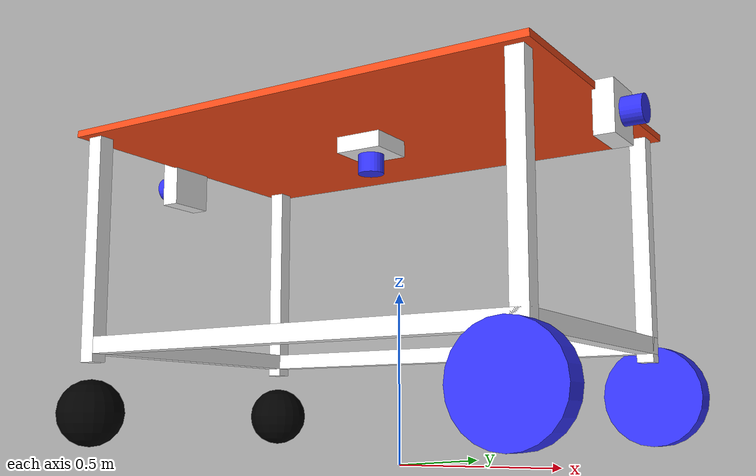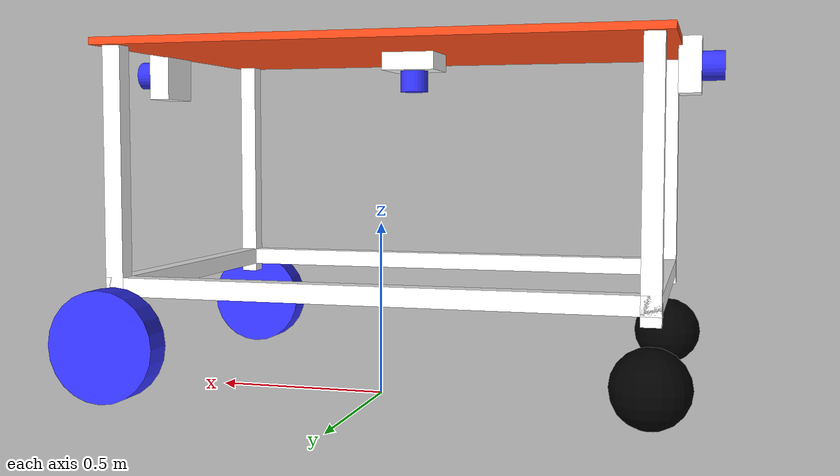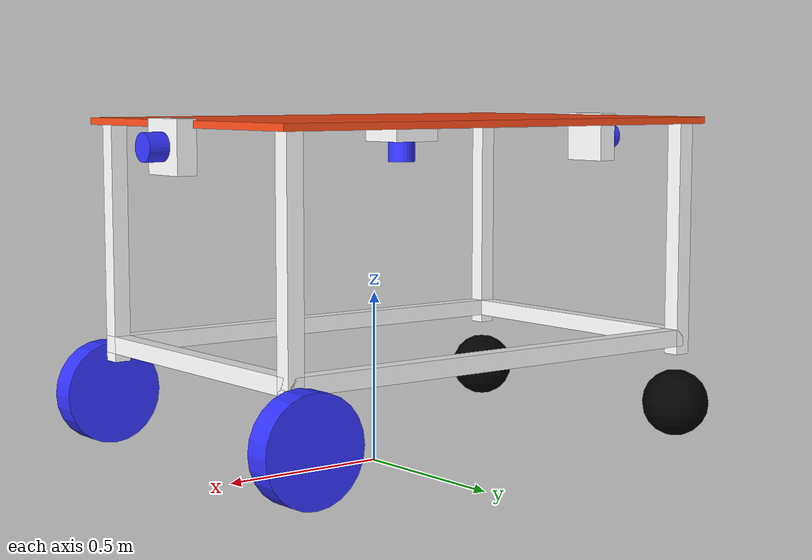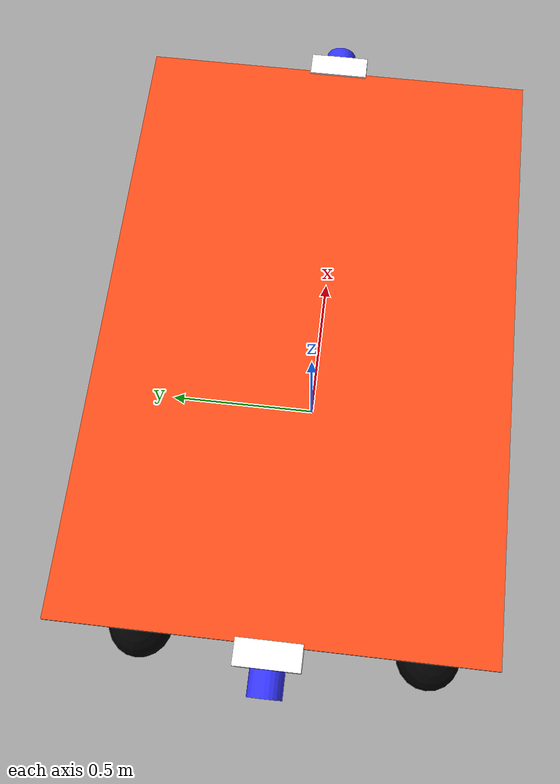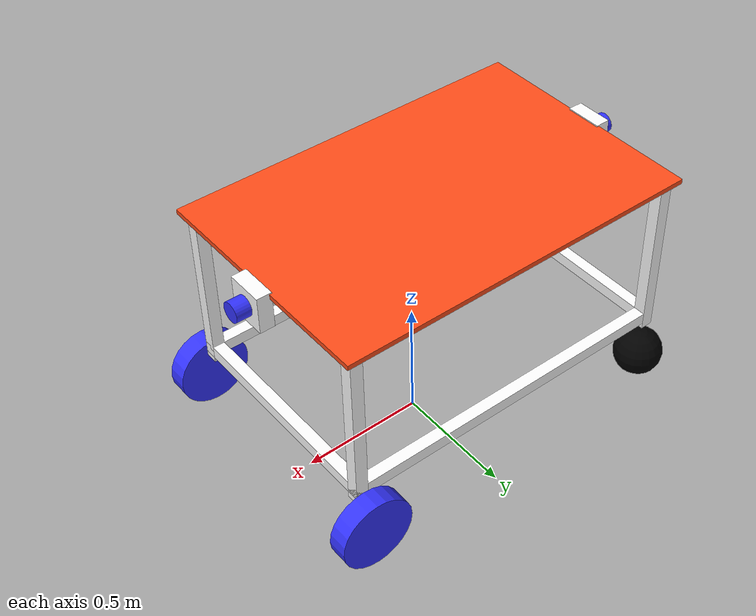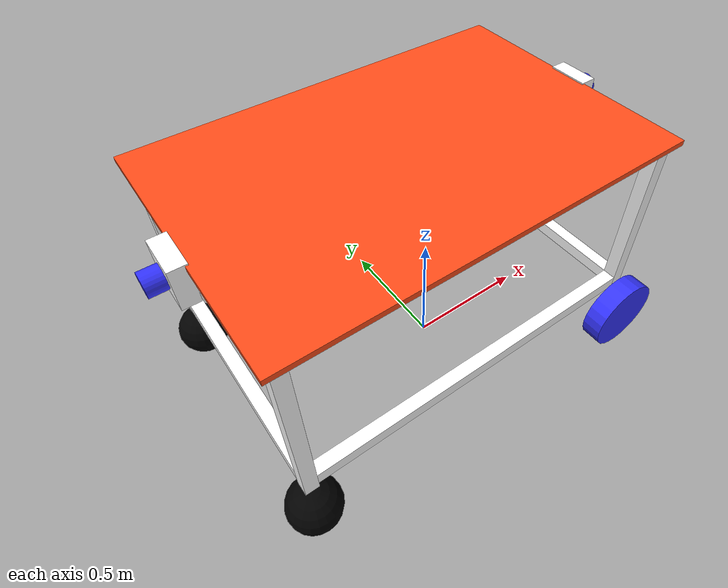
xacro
<?xml version="1.0"?>
<robot xmlns:xacro="http://www.ros.org/wiki/xacro" >

    <xacro:include filename="inertial_macros.xacro"/>

    <material name="white">
        <color rgba="1 1 1 1" />
    </material>

    <material name="orange">
        <color rgba="1 0.3 0.1 1"/>
    </material>

    <material name="blue">
        <color rgba="0.2 0.2 1 1"/>
    </material>

    <material name="black">
        <color rgba="0 0 0 1"/>
    </material>

    <!-- BASE LINK -->

    <link name="base_link">

    </link>

    <!-- CHASSIS LINK -->

    <joint name="chassis_joint" type="fixed">
        <parent link="base_link"/>
        <child link="chassis"/>
        <origin xyz="-0.1 0 0"/>
    </joint>

    <link name="chassis">
        <visual>
            <origin xyz="0 0 1"/>
            <geometry>
                <box size="1.5 1 0.02"/>
            </geometry>
            <material name="orange"/>
        </visual>
        <collision>
            <origin xyz="0 0 1"/>
            <geometry>
                <box size="1.5 1 0.02"/>
            </geometry>
        </collision>
        <xacro:inertial_box mass="5" x="1.5" y="1" z="0.02">
            <origin xyz="0 0 0" rpy="0 0 0"/>
        </xacro:inertial_box>
    </link>

    <gazebo reference="chassis">
        <material>Gazebo/orange</material>
    </gazebo>

    <!-- leg_back left  link-->

    <joint name="back_leg_joint_1" type="fixed">
        <parent link="chassis"/>
        <child link="b_leg_1"/>
        <origin xyz="0.70 0.45 0.3"/>
    </joint>

    <link name="b_leg_1">
        <visual>
            <origin xyz="0 0 0.35"/>
            <geometry>
                <box size="0.05 0.05 0.7"/>
            </geometry>
            <material name="white"/>
        </visual>
        <collision>
            <origin xyz="0 0 0.35"/>
            <geometry>
                <box size="0.05 0.05 0.7"/>
            </geometry>
        </collision>
        <xacro:inertial_box mass="1" x="0.05" y="0.05" z="1">
            <origin xyz="0 0 0" rpy="0 0 0"/>
        </xacro:inertial_box>
    </link>

    <!-- leg_back right  link-->

    <joint name="back_leg_joint_2" type="fixed">
        <parent link="chassis"/>
        <child link="b_leg_2"/>
        <origin xyz="0.70 -0.45 0.3"/>
    </joint>

    <link name="b_leg_2">
        <visual>
            <origin xyz="0 0 0.35"/>
            <geometry>
                <box size="0.05 0.05 0.7"/>
            </geometry>
            <material name="white"/>
        </visual>
        <collision>
            <origin xyz="0 0 0.35"/>
            <geometry>
                <box size="0.05 0.05 0.7"/>
            </geometry>
        </collision>
        <xacro:inertial_box mass="1" x="0.05" y="0.05" z="1">
            <origin xyz="0 0 0" rpy="0 0 0"/>
        </xacro:inertial_box>
    </link>

    <!-- leg_front left  link-->

    <joint name="front_leg_joint_1" type="fixed">
        <parent link="chassis"/>
        <child link="f_leg_1"/>
        <origin xyz="-0.70 -0.45 0.3"/>
    </joint>

    <link name="f_leg_1">
        <visual>
            <origin xyz="0 0 0.35"/>
            <geometry>
                <box size="0.05 0.05 0.7"/>
            </geometry>
            <material name="white"/>
        </visual>
        <collision>
            <origin xyz="0 0 0.35"/>
            <geometry>
                <box size="0.05 0.05 0.7"/>
            </geometry>
        </collision>
        <xacro:inertial_box mass="1" x="0.05" y="0.05" z="1">
            <origin xyz="0 0 0" rpy="0 0 0"/>
        </xacro:inertial_box>
    </link>

    <!-- leg_front right  link-->

    <joint name="front_leg_joint_2" type="fixed">
        <parent link="chassis"/>
        <child link="f_leg_2"/>
        <origin xyz="-0.70 0.45 0.3"/>
    </joint>

    <link name="f_leg_2">
        <visual>
            <origin xyz="0 0 0.35"/>
            <geometry>
                <box size="0.05 0.05 0.7"/>
            </geometry>
            <material name="white"/>
        </visual>
        <collision>
            <origin xyz="0 0 0.35"/>
            <geometry>
                <box size="0.05 0.05 0.7"/>
            </geometry>
        </collision>
        <xacro:inertial_box mass="1" x="0.05" y="0.05" z="1">
            <origin xyz="0 0 0" rpy="0 0 0"/>
        </xacro:inertial_box>
    </link>

    <!-- base_rod 1  link-->

    <joint name="base_rod_1_joint" type="fixed">
        <parent link="b_leg_1"/>
        <child link="base_rod_1"/>
        <origin xyz="0.025 0.025 0.05"/>
    </joint>

    <link name="base_rod_1">
        <visual>
            <origin xyz="-0.7 -0.025 0"/>
            <geometry>
                <box size="1.4 0.05 0.05"/>
            </geometry>
            <material name="white"/>
        </visual>
        <collision>
            <origin xyz="-0.7 -0.025 0"/>
            <geometry>
                <box size="1.4 0.05 0.05"/>
            </geometry>
        </collision>
        <xacro:inertial_box mass="1" x="1.4" y="0.05" z="0.05">
            <origin xyz="0 0 0" rpy="0 0 0"/>
        </xacro:inertial_box>
    </link>

    <!-- base_rod 2  link-->

    <joint name="base_rod_2_joint" type="fixed">
        <parent link="b_leg_2"/>
        <child link="base_rod_2"/>
        <origin xyz="0.025 0.025 0.05"/>
    </joint>

    <link name="base_rod_2">
        <visual>
            <origin xyz="-0.7 -0.025 0"/>
            <geometry>
                <box size="1.4 0.05 0.05"/>
            </geometry>
            <material name="white"/>
        </visual>
        <collision>
            <origin xyz="-0.7 -0.025 0"/>
            <geometry>
                <box size="1.4 0.05 0.05"/>
            </geometry>
        </collision>
        <xacro:inertial_box mass="1" x="1.4" y="0.05" z="0.05">
            <origin xyz="0 0 0" rpy="0 0 0"/>
        </xacro:inertial_box>
    </link>

    <!-- base_rod 3  link-->

    <joint name="base_rod_3_joint" type="fixed">
        <parent link="b_leg_1"/>
        <child link="base_rod_3"/>
        <origin xyz="0.025 0.025 0.05"/>
    </joint>

    <link name="base_rod_3">
        <visual>
            <origin xyz="-0.025 -0.45 0"/>
            <geometry>
                <box size="0.05 0.9 0.05"/>
            </geometry>
            <material name="white"/>
        </visual>
        <collision>
            <origin xyz="-0.025 -0.45 0"/>
            <geometry>
                <box size="0.05 0.9 0.05"/>
            </geometry>
        </collision>
        <xacro:inertial_box mass="1" x="0.05" y="0.9" z="0.05">
            <origin xyz="0 0 0" rpy="0 0 0"/>
        </xacro:inertial_box>
    </link>

    <!-- base_rod 4  link-->

    <joint name="base_rod_4_joint" type="fixed">
        <parent link="f_leg_2"/>
        <child link="base_rod_4"/>
        <origin xyz="0.025 0.025 0.05"/>
    </joint>

    <link name="base_rod_4">
        <visual>
            <origin xyz="-0.025 -0.45 0"/>
            <geometry>
                <box size="0.05 0.9 0.05"/>
            </geometry>
            <material name="white"/>
        </visual>
        <collision>
            <origin xyz="-0.025 -0.45 0"/>
            <geometry>
                <box size="0.05 0.9 0.05"/>
            </geometry>
        </collision>
        <xacro:inertial_box mass="1" x="0.05" y="0.9" z="0.05">
            <origin xyz="0 0 0" rpy="0 0 0"/>
        </xacro:inertial_box>
    </link>

    <!-- LEFT WHEEL LINK -->

    <joint name="left_wheel_joint" type="continuous">
        <parent link="base_link"/>
        <child link="left_wheel"/>
        <origin xyz="0.6 0.52 0.2" rpy="-${pi/2} 0 0" />
        <axis xyz="0 0 1"/>
    </joint>

    <link name="left_wheel">
        <visual>
            <geometry>
                <cylinder radius="0.15" length="0.08"/>
            </geometry>
            <material name="blue"/>
        </visual>
        <collision>
            <geometry>
                <cylinder radius="0.15" length="0.08"/>
            </geometry>
        </collision>
        <xacro:inertial_cylinder mass="1" length="0.15" radius="0.08">
            <origin xyz="0 0 0" rpy="0 0 0"/>
        </xacro:inertial_cylinder>
    </link>

    <gazebo reference="left_wheel">
        <material>Gazebo/Blue</material>
    </gazebo>

    <!-- RIGHT WHEEL LINK -->

    <joint name="right_wheel_joint" type="continuous">
        <parent link="base_link"/>
        <child link="right_wheel"/>
        <origin xyz="0.6 -0.52 0.2" rpy="${pi/2} 0 0" />
        <axis xyz="0 0 -1"/>
    </joint>

    <link name="right_wheel">
        <visual>
            <geometry>
                <cylinder radius="0.15" length="0.08"/>
            </geometry>
            <material name="blue"/>
        </visual>
        <collision>
            <geometry>
                <cylinder radius="0.15" length="0.08"/>
            </geometry>
        </collision>
        <xacro:inertial_cylinder mass="1" length="0.15" radius="0.08">
            <origin xyz="0 0 0" rpy="0 0 0"/>
        </xacro:inertial_cylinder>
    </link>

    <gazebo reference="right_wheel">
        <material>Gazebo/Blue</material>
    </gazebo>

    <!-- CASTER WHEEL 1 LINK -->

    <joint name="caster_wheel_joint1" type="fixed">
        <parent link="chassis"/>
        <child link="caster_wheel1"/>
        <origin xyz="-0.7 0.45 0.15"/>
    </joint>

    <link name="caster_wheel1">
        <visual>
            <geometry>
                <sphere radius="0.1"/>
            </geometry>
            <material name="black"/>
        </visual>
        <collision>
            <geometry>
                <sphere radius="0.1"/>
            </geometry>
        </collision>
        <xacro:inertial_sphere mass="0.2" radius="0.1">
            <origin xyz="0 0 0" rpy="0 0 0"/>
        </xacro:inertial_sphere>
    </link>

    <gazebo reference="caster_wheel1">
        <material>Gazebo/Black</material>
        <mu1 value="0.001"/>
        <mu2 value="0.001"/>
    </gazebo>

    <!-- CASTER WHEEL 2 LINK -->

    <joint name="caster_wheel_joint2" type="fixed">
        <parent link="chassis"/>
        <child link="caster_wheel2"/>
        <origin xyz="-0.7 -0.45 0.15"/>
    </joint>

    <link name="caster_wheel2">
        <visual>
            <geometry>
                <sphere radius="0.1"/>
            </geometry>
            <material name="black"/>
        </visual>
        <collision>
            <geometry>
                <sphere radius="0.1"/>
            </geometry>
        </collision>
        <xacro:inertial_sphere mass="0.2" radius="0.1">
            <origin xyz="0 0 0" rpy="0 0 0"/>
        </xacro:inertial_sphere>
    </link>

    <gazebo reference="caster_wheel2">
        <material>Gazebo/Black</material>
        <mu1 value="0.001"/>
        <mu2 value="0.001"/>
    </gazebo>

        <!-- CAMERA LINK 1 -->

     <joint name="camera_joint1" type="fixed">
        <origin xyz="0.8 0 0.94" rpy="0 0 0"/>
        <parent link="chassis"/>
        <child link="camera_link1"/>
    </joint>

    <link name="camera_link1">
        <visual>
            <origin xyz="-0.03 0 0" rpy="0 0 0"/>
            <geometry>
                <box size="0.06 0.15 0.15" />
            </geometry>
            <material name="white" />
        </visual>
        <visual>
            <origin xyz="0.03 0 0" rpy="0 ${pi/2} 0"/>
            <geometry>
                <cylinder length="0.06" radius="0.04" />
            </geometry>
            <material name="blue" />
        </visual>
        <collision>
            <origin xyz="0.0 0 0" rpy="0 0 0"/>
            <geometry>
                <box size="0.12 0.15 0.15" />
            </geometry>
        </collision>
        <xacro:inertial_box mass="0.1" x="0.12" y="0.15" z="0.15">
            <origin xyz="0.0 0 0" rpy="0 0 0"/>
        </xacro:inertial_box>
    </link>

     <joint name="camera_optical_joint1" type="fixed">
        <origin xyz="0 0 0" rpy="-1.571 0 -1.571" />
        <parent link="camera_link1" />
        <child link="camera_link_optical1" />
    </joint>

    <link name="camera_link_optical1"></link>

    <gazebo reference="camera_link1">
        <sensor type="depth" name="my_camera1">
            <update_rate>20</update_rate>
            <visualize>true</visualize>
            <camera name="cam">
                <horizontal_fov>1.3962634</horizontal_fov>
                <image>
                    <width>640</width>
                    <height>480</height>
                    <format>R8B8G8</format>
                </image>
                <clip>
                    <near>0.02</near>
                    <far>300</far>
                </clip>
                <noise>
                    <type>gaussian</type>
                    <mean>0.0</mean>
                    <stddev>0.007</stddev>
                </noise>
            </camera>
            <plugin name="camera_controller1" filename="libgazebo_ros_camera.so">
                <frame_name>camera_link_optical</frame_name>
                <min_depth>0.1</min_depth>
                <max_depth>500</max_depth>
            </plugin>
        </sensor>
    </gazebo>

            <!-- CAMERA LINK 2 -->

     <joint name="camera_joint2" type="fixed">
        <origin xyz="-0.8 0 0.94" rpy="${pi} -${pi} 0"/>
        <parent link="chassis"/>
        <child link="camera_link2"/>
    </joint>

    <link name="camera_link2">
        <visual>
            <origin xyz="-0.03 0 0" rpy="0 0 0"/>
            <geometry>
                <box size="0.06 0.15 0.15" />
            </geometry>
            <material name="white" />
        </visual>
        <visual>
            <origin xyz="0.03 0 0" rpy="0 ${pi/2} 0"/>
            <geometry>
                <cylinder length="0.06" radius="0.04" />
            </geometry>
            <material name="blue" />
        </visual>
        <collision>
            <origin xyz="0.0 0 0" rpy="0 0 0"/>
            <geometry>
                <box size="0.12 0.15 0.15" />
            </geometry>
        </collision>
        <xacro:inertial_box mass="0.1" x="0.12" y="0.15" z="0.15">
            <origin xyz="0.0 0 0" rpy="0 0 0"/>
        </xacro:inertial_box>
    </link>

     <joint name="camera_optical_joint2" type="fixed">
        <origin xyz="0 0 0" rpy="-1.571 0 -1.571" />
        <parent link="camera_link2" />
        <child link="camera_link_optical2" />
    </joint>

    <link name="camera_link_optical2"></link>

    <gazebo reference="camera_link2">
        <sensor type="depth" name="my_camera2">
            <update_rate>20</update_rate>
            <visualize>true</visualize>
            <camera name="cam">
                <horizontal_fov>1.3962634</horizontal_fov>
                <image>
                    <width>640</width>
                    <height>480</height>
                    <format>R8B8G8</format>
                </image>
                <clip>
                    <near>0.02</near>
                    <far>300</far>
                </clip>
                <noise>
                    <type>gaussian</type>
                    <mean>0.0</mean>
                    <stddev>0.007</stddev>
                </noise>
            </camera>
            <plugin name="camera_controller2" filename="libgazebo_ros_camera.so">
                <frame_name>camera_link_optical</frame_name>
                <min_depth>0.1</min_depth>
                <max_depth>500</max_depth>
            </plugin>
        </sensor>
    </gazebo>

            <!-- CAMERA LINK 3 -->

     <joint name="camera_joint3" type="fixed">
        <origin xyz="0 0 0.94" rpy="0 ${pi/2} 0"/>
        <parent link="chassis"/>
        <child link="camera_link3"/>
    </joint>

    <link name="camera_link3">
        <visual>
            <origin xyz="-0.03 0 0" rpy="0 0 0"/>
            <geometry>
                <box size="0.06 0.15 0.15" />
            </geometry>
            <material name="white" />
        </visual>
        <visual>
            <origin xyz="0.03 0 0" rpy="0 ${pi/2} 0"/>
            <geometry>
                <cylinder length="0.06" radius="0.04" />
            </geometry>
            <material name="blue" />
        </visual>
        <collision>
            <origin xyz="0.0 0 0" rpy="0 0 0"/>
            <geometry>
                <box size="0.12 0.15 0.15" />
            </geometry>
        </collision>
        <xacro:inertial_box mass="0.1" x="0.12" y="0.15" z="0.15">
            <origin xyz="0.0 0 0" rpy="0 0 0"/>
        </xacro:inertial_box>
    </link>

     <joint name="camera_optical_joint3" type="fixed">
        <origin xyz="0 0 0" rpy="-1.571 0 -1.571" />
        <parent link="camera_link3" />
        <child link="camera_link_optical3" />
    </joint>

    <link name="camera_link_optical3"></link>

    <gazebo reference="camera_link3">
        <sensor type="depth" name="my_camera3">
            <update_rate>20</update_rate>
            <visualize>true</visualize>
            <camera name="cam">
                <horizontal_fov>1.3962634</horizontal_fov>
                <image>
                    <width>640</width>
                    <height>480</height>
                    <format>R8B8G8</format>
                </image>
                <clip>
                    <near>0.02</near>
                    <far>300</far>
                </clip>
                <noise>
                    <type>gaussian</type>
                    <mean>0.0</mean>
                    <stddev>0.007</stddev>
                </noise>
            </camera>
            <plugin name="camera_controller3" filename="libgazebo_ros_camera.so">
                <frame_name>camera_link_optical</frame_name>
                <min_depth>0.1</min_depth>
                <max_depth>500</max_depth>
            </plugin>
        </sensor>
    </gazebo>

</robot>
